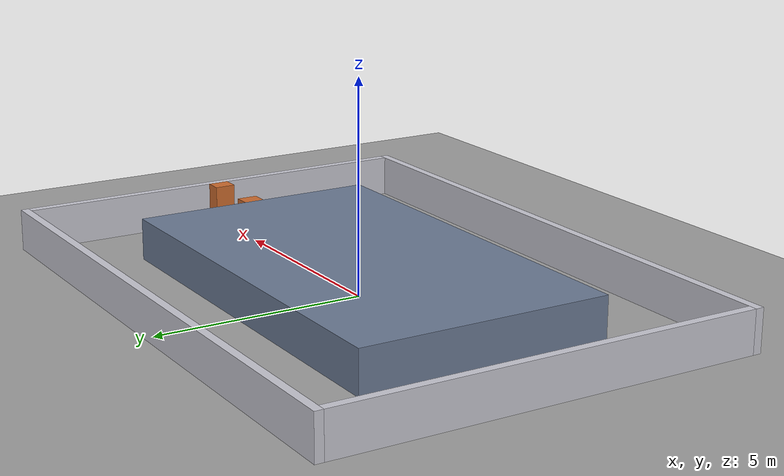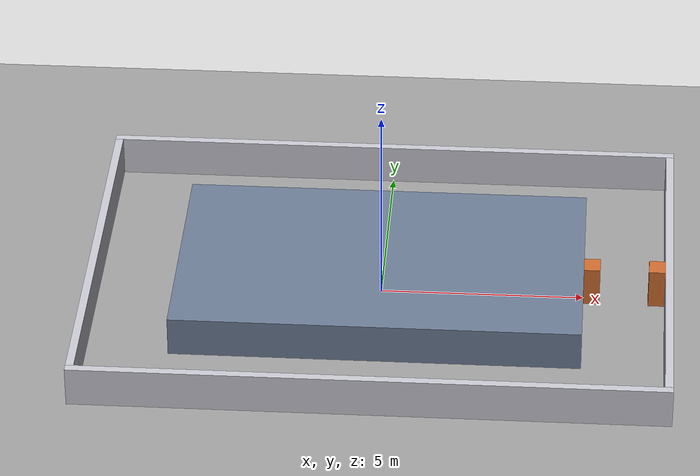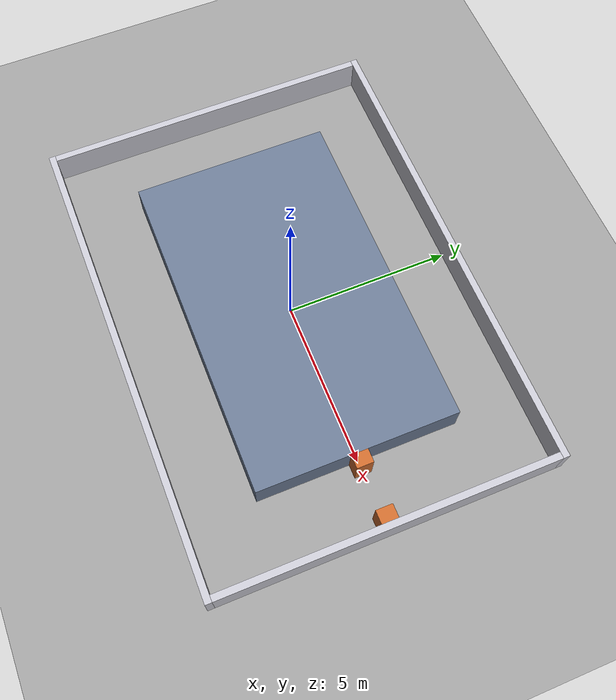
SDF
<?xml version="1.0"?>
<sdf version="1.6">
  <world name="m3_2_loop_world">
    <physics name="default_physics" type="ode">
      <real_time_update_rate>1000</real_time_update_rate>
      <max_step_size>0.001</max_step_size>
    </physics>
    <gravity>0 0 -9.81</gravity>

    <scene>
      <ambient>0.55 0.55 0.55 1</ambient>
      <background>0.75 0.80 0.85 1</background>
      <shadows>true</shadows>
    </scene>
    <light name="sun" type="directional">
      <pose>0 0 12 0 0 0</pose>
      <diffuse>0.9 0.9 0.9 1</diffuse>
      <specular>0.2 0.2 0.2 1</specular>
      <direction>-0.4 0.3 -1</direction>
    </light>

    <model name="ground_plane">
      <static>true</static>
      <link name="ground">
        <collision name="collision">
          <geometry><plane><normal>0 0 1</normal><size>30 24</size></plane></geometry>
          <surface><friction><ode><mu>1.0</mu><mu2>1.0</mu2></ode></friction></surface>
        </collision>
        <visual name="visual">
          <geometry><plane><normal>0 0 1</normal><size>30 24</size></plane></geometry>
          <material>
            <ambient>0.62 0.62 0.62 1</ambient>
            <diffuse>0.62 0.62 0.62 1</diffuse>
          </material>
        </visual>
      </link>
    </model>

    <!-- Outer rectangle: its inner faces are x=+/-7 and y=+/-5 m. -->
    <model name="outer_walls">
      <static>true</static>
      <link name="walls">
        <collision name="north_collision"><pose>0 5.1 0.5 0 0 0</pose><geometry><box><size>14.4 0.2 1.0</size></box></geometry></collision>
        <visual name="north_visual"><pose>0 5.1 0.5 0 0 0</pose><geometry><box><size>14.4 0.2 1.0</size></box></geometry><material><ambient>0.78 0.78 0.82 1</ambient></material></visual>
        <collision name="south_collision"><pose>0 -5.1 0.5 0 0 0</pose><geometry><box><size>14.4 0.2 1.0</size></box></geometry></collision>
        <visual name="south_visual"><pose>0 -5.1 0.5 0 0 0</pose><geometry><box><size>14.4 0.2 1.0</size></box></geometry><material><ambient>0.78 0.78 0.82 1</ambient></material></visual>
        <collision name="west_collision"><pose>-7.1 0 0.5 0 0 0</pose><geometry><box><size>0.2 10.0 1.0</size></box></geometry></collision>
        <visual name="west_visual"><pose>-7.1 0 0.5 0 0 0</pose><geometry><box><size>0.2 10.0 1.0</size></box></geometry><material><ambient>0.78 0.78 0.82 1</ambient></material></visual>
        <collision name="east_collision"><pose>7.1 0 0.5 0 0 0</pose><geometry><box><size>0.2 10.0 1.0</size></box></geometry></collision>
        <visual name="east_visual"><pose>7.1 0 0.5 0 0 0</pose><geometry><box><size>0.2 10.0 1.0</size></box></geometry><material><ambient>0.78 0.78 0.82 1</ambient></material></visual>
      </link>
    </model>

    <!-- A 10 x 6 m central island creates a 2 m wide rectangular loop. -->
    <model name="central_island">
      <static>true</static>
      <pose>0 0 0.5 0 0 0</pose>
      <link name="island">
        <collision name="collision"><geometry><box><size>10 6 1.0</size></box></geometry></collision>
        <visual name="visual">
          <geometry><box><size>10 6 1.0</size></box></geometry>
          <material><ambient>0.42 0.48 0.58 1</ambient><diffuse>0.42 0.48 0.58 1</diffuse></material>
        </visual>
      </link>
    </model>

    <!-- Self-designed challenge: baffles narrow the right corridor from 2.0
         to 1.2 m. They test whether a 5 cm grid preserves a navigable gate. -->
    <model name="narrow_gate">
      <static>true</static>
      <link name="baffles">
        <collision name="inner_collision"><pose>5.2 0 0.5 0 0 0</pose><geometry><box><size>0.4 0.5 1.0</size></box></geometry></collision>
        <visual name="inner_visual"><pose>5.2 0 0.5 0 0 0</pose><geometry><box><size>0.4 0.5 1.0</size></box></geometry><material><ambient>0.80 0.42 0.18 1</ambient></material></visual>
        <collision name="outer_collision"><pose>6.8 0 0.5 0 0 0</pose><geometry><box><size>0.4 0.5 1.0</size></box></geometry></collision>
        <visual name="outer_visual"><pose>6.8 0 0.5 0 0 0</pose><geometry><box><size>0.4 0.5 1.0</size></box></geometry><material><ambient>0.80 0.42 0.18 1</ambient></material></visual>
      </link>
    </model>

    <plugin name="gazebo_ros_state" filename="libgazebo_ros_state.so">
      <update_rate>20</update_rate>
      <ros><remapping>model_states:=/gazebo/model_states</remapping></ros>
    </plugin>

    <gui fullscreen="0">
      <camera name="overview">
        <pose>0 -15 18 0 0.72 1.57</pose>
      </camera>
    </gui>
  </world>
</sdf>
